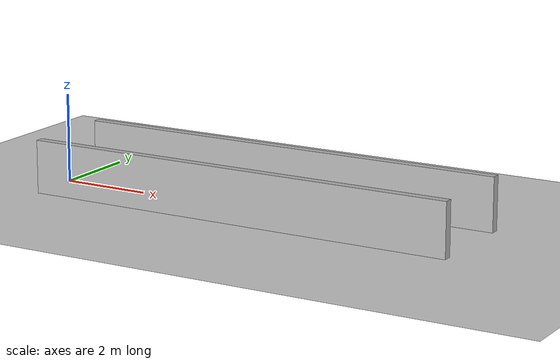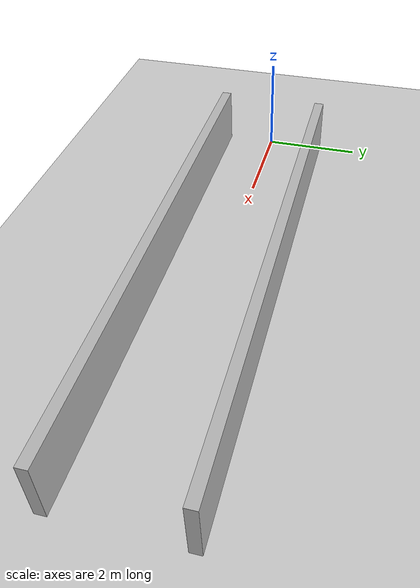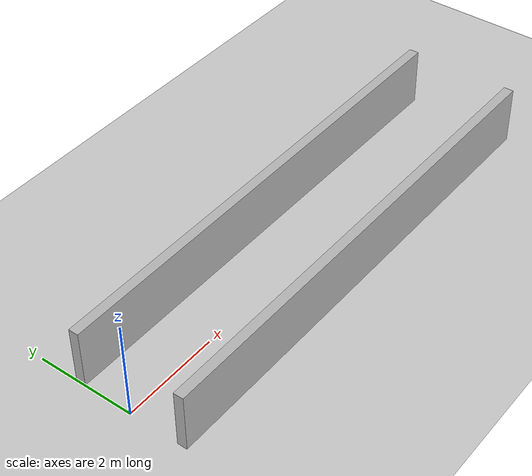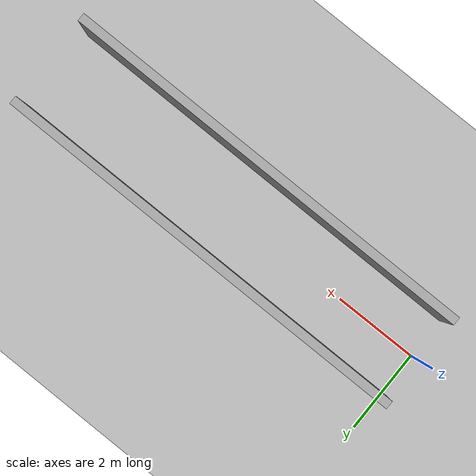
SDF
<?xml version="1.0"?>
<sdf version="1.6">
  <world name="v2-04g-r4-r1-corridor-s5102">
    <gravity>0 0 -9.81</gravity>
    <physics name="v2_deterministic" type="ode">
      <max_step_size>0.002</max_step_size>
      <real_time_update_rate>500</real_time_update_rate>
    </physics>
    <include>
      <uri>model://sun</uri>
    </include>
    <include>
      <uri>model://ground_plane</uri>
    </include>
    <model name="corridor-left">
      <static>true</static>
      <pose>5.005188880 1.104628325 0.600000000 0 0 -0.000104888</pose>
      <link name="link">
        <collision name="collision">
          <geometry>
            <box>
              <size>10.000000 0.200000 1.200000</size>
            </box>
          </geometry>
        </collision>
        <visual name="visual">
          <geometry>
            <box>
              <size>10.000000 0.200000 1.200000</size>
            </box>
          </geometry>
        </visual>
      </link>
    </model>
    <model name="corridor-right">
      <static>true</static>
      <pose>5.000618925 -1.111623222 0.600000000 0 0 -0.002201316</pose>
      <link name="link">
        <collision name="collision">
          <geometry>
            <box>
              <size>10.000000 0.200000 1.200000</size>
            </box>
          </geometry>
        </collision>
        <visual name="visual">
          <geometry>
            <box>
              <size>10.000000 0.200000 1.200000</size>
            </box>
          </geometry>
        </visual>
      </link>
    </model>
  </world>
</sdf>
